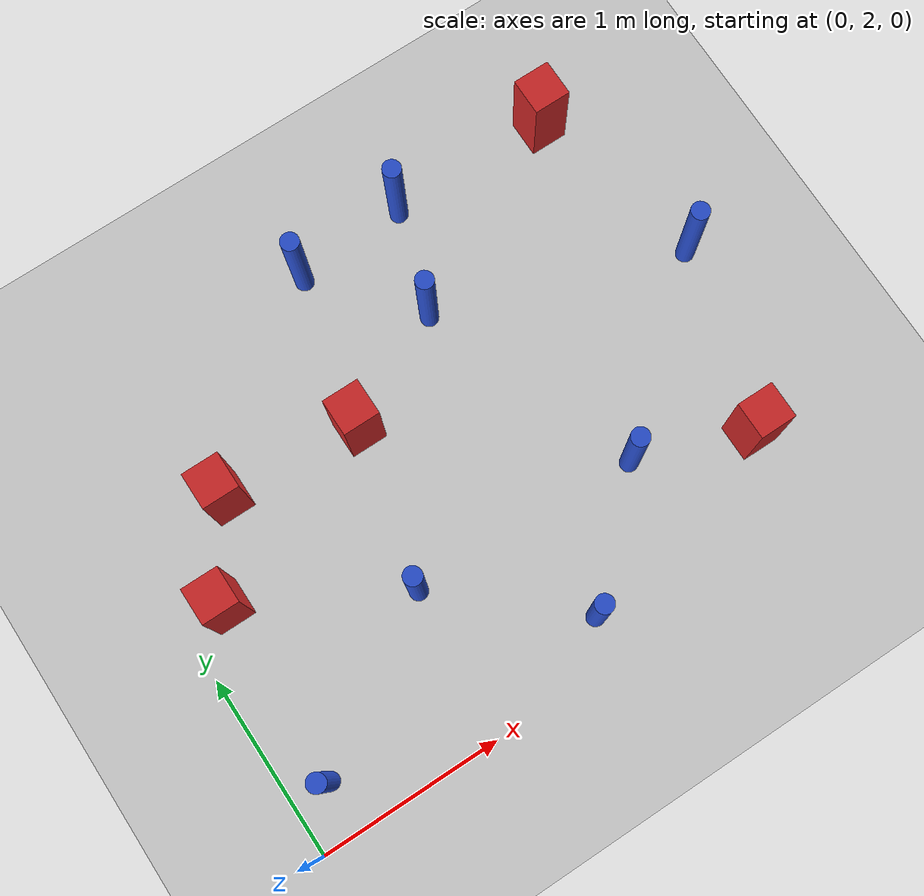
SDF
<sdf version="1.6">
 <world name="default">
  <model name="ground_plane">
   <static>1</static>
   <link name="link">
    <collision name="collision">
     <geometry><plane><normal>0 0 1</normal><size>100 100</size></plane></geometry>
     <surface><friction><ode><mu>100</mu><mu2>50</mu2></ode></friction></surface>
    </collision>
    <visual name="visual">
     <cast_shadows>0</cast_shadows>
     <geometry><plane><normal>0 0 1</normal><size>100 100</size></plane></geometry>
     <material>
      <ambient>1.0 1.0 1.0 1.0</ambient>
      <diffuse>0.8 0.8 0.8 1.0</diffuse>
      <specular>0.01 0.01 0.01 1.000000</specular>
     </material>
    </visual>
   </link>
  </model>
  <model name="square_post_obstacle8">
   <static>true</static>
   <pose>0.52185416256 3.75010447684 1.91545236811e-07 -7.35059704564e-06 1.12565212e-07 2.39332434364e-05</pose>
   <link name="link">
    <pose>0 0 0.25 0 -0 0</pose>
    <inertial>
     <mass>100</mass>
     <inertia>
      <ixx>0.166667</ixx>
      <ixy>0</ixy>
      <ixz>0</ixz>
      <iyy>0.166667</iyy>
      <iyz>0</iyz>
      <izz>0.166667</izz>
     </inertia>
    </inertial>
    <collision name="collision"><geometry><box><size>.2 .2 .5</size></box></geometry></collision>
    <visual name="visual">
     <geometry><box><size>.2 .2 .5</size></box></geometry>
     <material>
      <script><name>Gazebo/Red</name><uri>file://media/materials/scripts/gazebo.material</uri></script>
     </material>
    </visual>
   </link>
  </model>
  <model name="pole_obstacle20">
   <static>true</static>
   <pose>1.07378791365 2.82501604098 7.38925637345e-09 -8.47170692799e-08 1.24976765053e-08 -1.74513093017e-07</pose>
   <link name="link">
    <pose>0 0 0.3 0 -0 0</pose>
    <inertial>
     <mass>1</mass>
     <inertia><ixx>0.145833</ixx><ixy>0</ixy><ixz>0</ixz><iyy>0.145833</iyy><iyz>0</iyz><izz>0.125</izz></inertia>
    </inertial>
    <collision name="collision">
     <geometry><cylinder><radius>0.05</radius><length>.6</length></cylinder></geometry>
    </collision>
    <visual name="visual">
     <geometry><cylinder><radius>0.05</radius><length>.6</length></cylinder></geometry>
     <material>
      <script><name>Gazebo/Blue</name><uri>file://media/materials/scripts/gazebo.material</uri></script>
     </material>
    </visual>
   </link>
  </model>
  <model name="square_post_obstacle24">
   <static>true</static>
   <pose>0.238904374398 3.28265726536 1.91545236811e-07 -7.35059704564e-06 1.12565212e-07 2.39332434364e-05</pose>
   <link name="link">
    <pose>0 0 0.25 0 -0 0</pose>
    <inertial>
     <mass>100</mass>
     <inertia>
      <ixx>0.166667</ixx>
      <ixy>0</ixy>
      <ixz>0</ixz>
      <iyy>0.166667</iyy>
      <iyz>0</iyz>
      <izz>0.166667</izz>
     </inertia>
    </inertial>
    <collision name="collision"><geometry><box><size>.2 .2 .5</size></box></geometry></collision>
    <visual name="visual">
     <geometry><box><size>.2 .2 .5</size></box></geometry>
     <material>
      <script><name>Gazebo/Red</name><uri>file://media/materials/scripts/gazebo.material</uri></script>
     </material>
    </visual>
   </link>
  </model>
  <model name="pole_obstacle34">
   <static>true</static>
   <pose>3.20870922685 3.55319952448 7.38925637345e-09 -8.47170692798e-08 1.24976764939e-08 -1.74513093025e-07</pose>
   <link name="link">
    <pose>0 0 0.3 0 -0 0</pose>
    <inertial>
     <mass>1</mass>
     <inertia><ixx>0.145833</ixx><ixy>0</ixy><ixz>0</ixz><iyy>0.145833</iyy><iyz>0</iyz><izz>0.125</izz></inertia>
    </inertial>
    <collision name="collision">
     <geometry><cylinder><radius>0.05</radius><length>.6</length></cylinder></geometry>
    </collision>
    <visual name="visual">
     <geometry><cylinder><radius>0.05</radius><length>.6</length></cylinder></geometry>
     <material>
      <script><name>Gazebo/Blue</name><uri>file://media/materials/scripts/gazebo.material</uri></script>
     </material>
    </visual>
   </link>
  </model>
  <model name="pole_obstacle56">
   <static>true</static>
   <pose>2.32313511469 2.78692863247 7.38925637345e-09 -8.47170692798e-08 1.24976764939e-08 -1.74513093025e-07</pose>
   <link name="link">
    <pose>0 0 0.3 0 -0 0</pose>
    <inertial>
     <mass>1</mass>
     <inertia><ixx>0.145833</ixx><ixy>0</ixy><ixz>0</ixz><iyy>0.145833</iyy><iyz>0</iyz><izz>0.125</izz></inertia>
    </inertial>
    <collision name="collision">
     <geometry><cylinder><radius>0.05</radius><length>.6</length></cylinder></geometry>
    </collision>
    <visual name="visual">
     <geometry><cylinder><radius>0.05</radius><length>.6</length></cylinder></geometry>
     <material>
      <script><name>Gazebo/Blue</name><uri>file://media/materials/scripts/gazebo.material</uri></script>
     </material>
    </visual>
   </link>
  </model>
  <model name="square_post_obstacle45">
   <static>true</static>
   <pose>2.95661262917 4.55752413526 1.91545236811e-07 -7.35059704564e-06 1.12565212e-07 2.39332434364e-05</pose>
   <link name="link">
    <pose>0 0 0.25 0 -0 0</pose>
    <inertial>
     <mass>100</mass>
     <inertia>
      <ixx>0.166667</ixx>
      <ixy>0</ixy>
      <ixz>0</ixz>
      <iyy>0.166667</iyy>
      <iyz>0</iyz>
      <izz>0.166667</izz>
     </inertia>
    </inertial>
    <collision name="collision"><geometry><box><size>.2 .2 .5</size></box></geometry></collision>
    <visual name="visual">
     <geometry><box><size>.2 .2 .5</size></box></geometry>
     <material>
      <script><name>Gazebo/Red</name><uri>file://media/materials/scripts/gazebo.material</uri></script>
     </material>
    </visual>
   </link>
  </model>
  <model name="pole_obstacle61">
   <static>true</static>
   <pose>2.0718901959 4.56500717576 7.38925637345e-09 -8.47170692798e-08 1.24976765033e-08 -1.74513093019e-07</pose>
   <link name="link">
    <pose>0 0 0.3 0 -0 0</pose>
    <inertial>
     <mass>1</mass>
     <inertia><ixx>0.145833</ixx><ixy>0</ixy><ixz>0</ixz><iyy>0.145833</iyy><iyz>0</iyz><izz>0.125</izz></inertia>
    </inertial>
    <collision name="collision">
     <geometry><cylinder><radius>0.05</radius><length>.6</length></cylinder></geometry>
    </collision>
    <visual name="visual">
     <geometry><cylinder><radius>0.05</radius><length>.6</length></cylinder></geometry>
     <material>
      <script><name>Gazebo/Blue</name><uri>file://media/materials/scripts/gazebo.material</uri></script>
     </material>
    </visual>
   </link>
  </model>
  <model name="pole_obstacle62">
   <static>true</static>
   <pose>1.73914775702 2.23268547517 7.38925637345e-09 -8.47170692799e-08 1.24976765053e-08 -1.74513093017e-07</pose>
   <link name="link">
    <pose>0 0 0.3 0 -0 0</pose>
    <inertial>
     <mass>1</mass>
     <inertia><ixx>0.145833</ixx><ixy>0</ixy><ixz>0</ixz><iyy>0.145833</iyy><iyz>0</iyz><izz>0.125</izz></inertia>
    </inertial>
    <collision name="collision">
     <geometry><cylinder><radius>0.05</radius><length>.6</length></cylinder></geometry>
    </collision>
    <visual name="visual">
     <geometry><cylinder><radius>0.05</radius><length>.6</length></cylinder></geometry>
     <material>
      <script><name>Gazebo/Blue</name><uri>file://media/materials/scripts/gazebo.material</uri></script>
     </material>
    </visual>
   </link>
  </model>
  <model name="pole_obstacle91">
   <static>true</static>
   <pose>1.89550026319 3.99637170486 7.38925637345e-09 -8.47170692799e-08 1.24976765077e-08 -1.74513093019e-07</pose>
   <link name="link">
    <pose>0 0 0.3 0 -0 0</pose>
    <inertial>
     <mass>1</mass>
     <inertia><ixx>0.145833</ixx><ixy>0</ixy><ixz>0</ixz><iyy>0.145833</iyy><iyz>0</iyz><izz>0.125</izz></inertia>
    </inertial>
    <collision name="collision">
     <geometry><cylinder><radius>0.05</radius><length>.6</length></cylinder></geometry>
    </collision>
    <visual name="visual">
     <geometry><cylinder><radius>0.05</radius><length>.6</length></cylinder></geometry>
     <material>
      <script><name>Gazebo/Blue</name><uri>file://media/materials/scripts/gazebo.material</uri></script>
     </material>
    </visual>
   </link>
  </model>
  <model name="square_post_obstacle94">
   <static>true</static>
   <pose>2.92326156692 2.57454246252 1.91545236811e-07 -7.35059704564e-06 1.12565212e-07 2.39332434364e-05</pose>
   <link name="link">
    <pose>0 0 0.25 0 -0 0</pose>
    <inertial>
     <mass>100</mass>
     <inertia>
      <ixx>0.166667</ixx>
      <ixy>0</ixy>
      <ixz>0</ixz>
      <iyy>0.166667</iyy>
      <iyz>0</iyz>
      <izz>0.166667</izz>
     </inertia>
    </inertial>
    <collision name="collision"><geometry><box><size>.2 .2 .5</size></box></geometry></collision>
    <visual name="visual">
     <geometry><box><size>.2 .2 .5</size></box></geometry>
     <material>
      <script><name>Gazebo/Red</name><uri>file://media/materials/scripts/gazebo.material</uri></script>
     </material>
    </visual>
   </link>
  </model>
  <model name="pole_obstacle133">
   <static>true</static>
   <pose>0.212949581749 2.28273336041 7.38925637345e-09 -8.47170692792e-08 1.24976764352e-08 -1.74513093043e-07</pose>
   <link name="link">
    <pose>0 0 0.3 0 -0 0</pose>
    <inertial>
     <mass>1</mass>
     <inertia><ixx>0.145833</ixx><ixy>0</ixy><ixz>0</ixz><iyy>0.145833</iyy><iyz>0</iyz><izz>0.125</izz></inertia>
    </inertial>
    <collision name="collision">
     <geometry><cylinder><radius>0.05</radius><length>.6</length></cylinder></geometry>
    </collision>
    <visual name="visual">
     <geometry><cylinder><radius>0.05</radius><length>.6</length></cylinder></geometry>
     <material>
      <script><name>Gazebo/Blue</name><uri>file://media/materials/scripts/gazebo.material</uri></script>
     </material>
    </visual>
   </link>
  </model>
  <model name="square_post_obstacle173">
   <static>true</static>
   <pose>1.26928763158 3.68544319764 1.91545236811e-07 -7.35059704564e-06 1.12565212e-07 2.39332434364e-05</pose>
   <link name="link">
    <pose>0 0 0.25 0 -0 0</pose>
    <inertial>
     <mass>100</mass>
     <inertia>
      <ixx>0.166667</ixx>
      <ixy>0</ixy>
      <ixz>0</ixz>
      <iyy>0.166667</iyy>
      <iyz>0</iyz>
      <izz>0.166667</izz>
     </inertia>
    </inertial>
    <collision name="collision"><geometry><box><size>.2 .2 .5</size></box></geometry></collision>
    <visual name="visual">
     <geometry><box><size>.2 .2 .5</size></box></geometry>
     <material>
      <script><name>Gazebo/Red</name><uri>file://media/materials/scripts/gazebo.material</uri></script>
     </material>
    </visual>
   </link>
  </model>
  <model name="pole_obstacle203">
   <static>true</static>
   <pose>1.45637993662 4.5192764202 7.38925637345e-09 -8.47170692799e-08 1.24976765033e-08 -1.74513093018e-07</pose>
   <link name="link">
    <pose>0 0 0.3 0 -0 0</pose>
    <inertial>
     <mass>1</mass>
     <inertia><ixx>0.145833</ixx><ixy>0</ixy><ixz>0</ixz><iyy>0.145833</iyy><iyz>0</iyz><izz>0.125</izz></inertia>
    </inertial>
    <collision name="collision">
     <geometry><cylinder><radius>0.05</radius><length>.6</length></cylinder></geometry>
    </collision>
    <visual name="visual">
     <geometry><cylinder><radius>0.05</radius><length>.6</length></cylinder></geometry>
     <material>
      <script><name>Gazebo/Blue</name><uri>file://media/materials/scripts/gazebo.material</uri></script>
     </material>
    </visual>
   </link>
  </model>
 </world>
</sdf>
